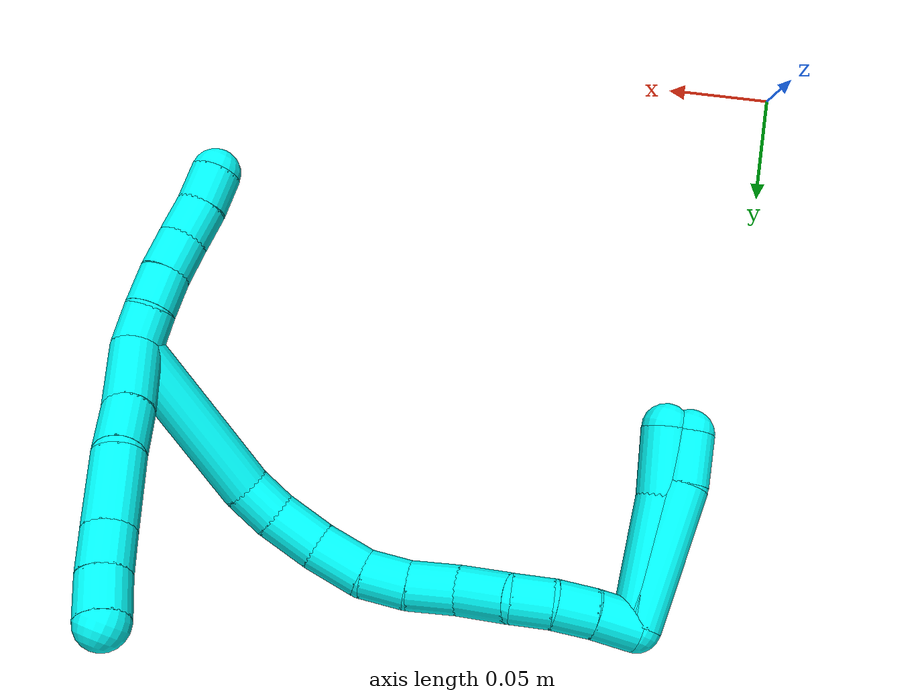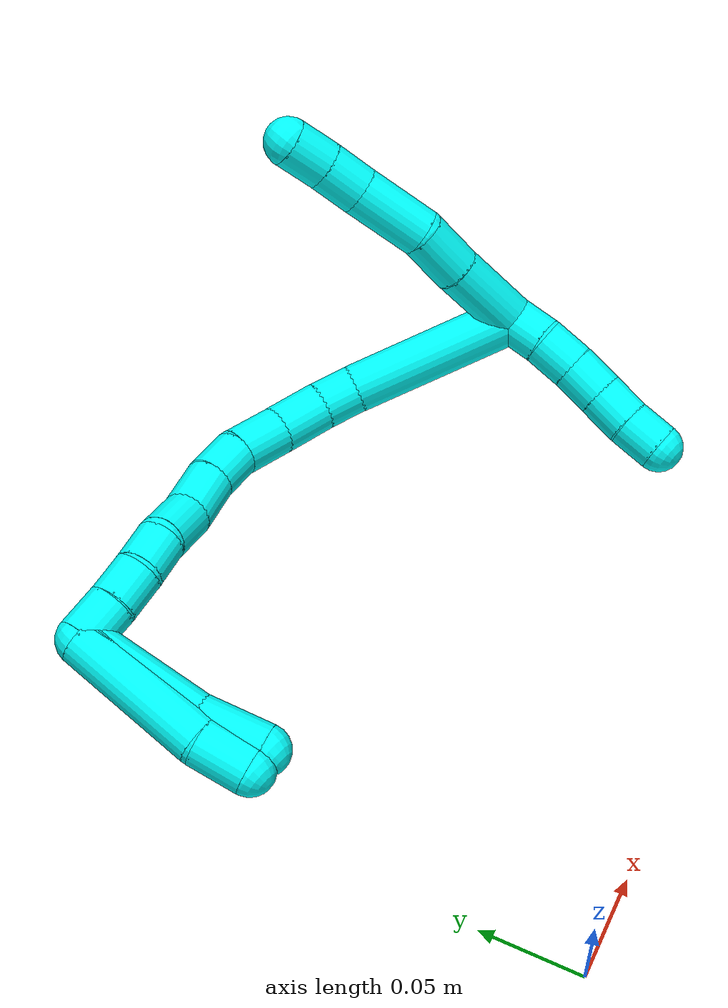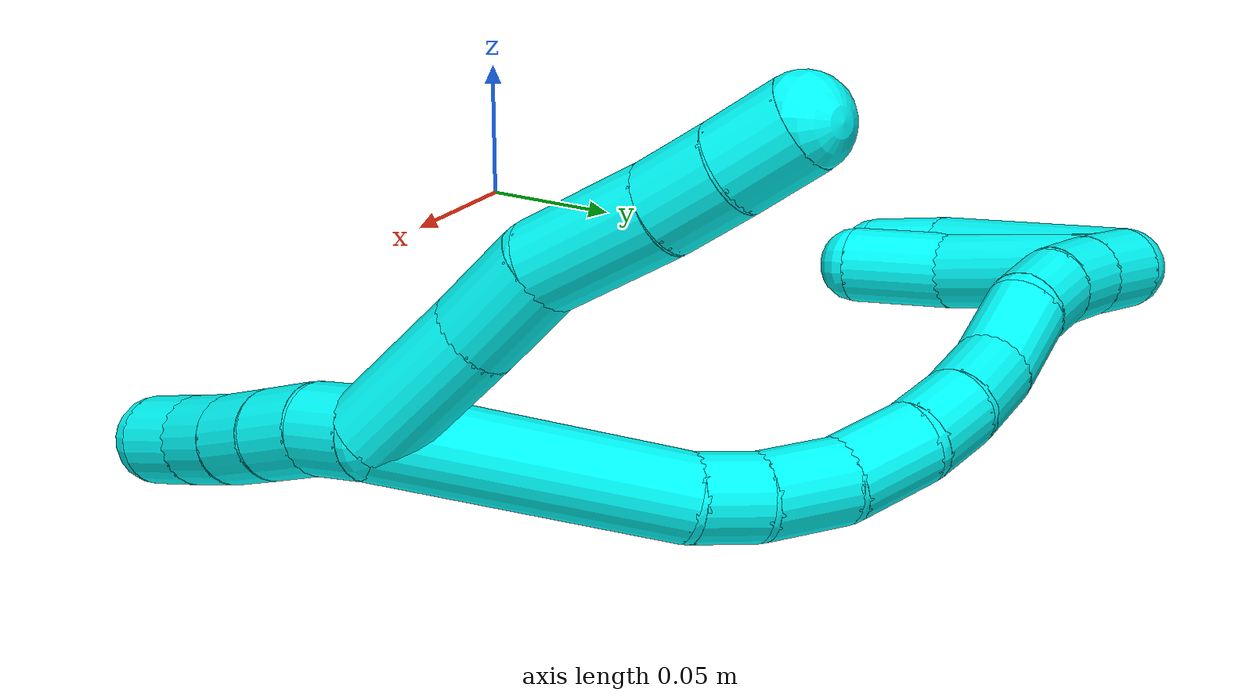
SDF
<sdf version="1.7">
 <world name="default">
  <model name="photoneo_s_sensor">
   <static>1</static>
   <pose>0 0 2 1.57079 1.57079 3.14159</pose>
   <link name="link">
    <inertial><mass>0.1</mass></inertial>
    <sensor name="sensor" type="depth">
     <update_rate>30</update_rate>
     <camera>
      <horizontal_fov>1.22</horizontal_fov>
      <image><width>1920</width><height>1200</height><format>B8G8R8</format></image>
      <clip><near>0.1</near><far>4</far></clip>
      <depth_camera><output>points</output></depth_camera>
     </camera>
     <plugin name="camera_plugin" filename="libgazebo_ros_depth_camera.so">
      <baseline>0.2</baseline>
      <alwaysOn>1</alwaysOn>
      <updateRate>0.0</updateRate>
      <cameraName>camera_ir</cameraName>
      <imageTopicName>/camera/color/image_raw</imageTopicName>
      <cameraInfoTopicName>/camera/color/camera_info</cameraInfoTopicName>
      <depthImageTopicName>/camera/depth/image_raw</depthImageTopicName>
      <depthImageCameraInfoTopicName>/camera/depth/camera_info</depthImageCameraInfoTopicName>
      <pointCloudTopicName>/camera/depth/points</pointCloudTopicName>
      <frameName>fr_optical</frameName>
      <pointCloudCutoff>0.1</pointCloudCutoff>
      <pointCloudCutoffMax>2.0</pointCloudCutoffMax>
      <distortionK1>0</distortionK1>
      <distortionK2>0</distortionK2>
      <distortionK3>0</distortionK3>
      <distortionT1>0</distortionT1>
      <distortionT2>0</distortionT2>
      <CxPrime>0</CxPrime>
      <Cx>0</Cx>
      <Cy>0</Cy>
      <focalLength>0</focalLength>
      <hackBaseline>0</hackBaseline>
     </plugin>
    </sensor>
   </link>
  </model>
  <model name="bin">
   <static>1</static>
   <link name="bottom">
    <collision name="collision-bottom">
     <pose>0 0 -0.01 0 -0 0</pose>
     <geometry><box><size>0.8 0.6 0.02</size></box></geometry>
     <surface>
      <friction><ode><mu>100</mu><mu2>100</mu2></ode></friction>
      <contact><collide_bitmask>65535</collide_bitmask></contact>
     </surface>
    </collision>
   </link>
   <link name="west_wall">
    <collision name="collision-west_wall">
     <pose>-0.41 0 0.1 0 -0 0</pose>
     <geometry><box><size>0.02 0.6 0.2</size></box></geometry>
     <surface>
      <friction><ode><mu>100</mu><mu2>100</mu2></ode></friction>
      <contact><collide_bitmask>65535</collide_bitmask></contact>
     </surface>
    </collision>
   </link>
   <link name="east_wall">
    <collision name="collision-east_wall">
     <pose>0.41 0 0.1 0 -0 0</pose>
     <geometry><box><size>0.02 0.6 0.2</size></box></geometry>
     <surface>
      <friction><ode><mu>100</mu><mu2>100</mu2></ode></friction>
      <contact><collide_bitmask>65535</collide_bitmask></contact>
     </surface>
    </collision>
   </link>
   <link name="south_wall">
    <collision name="collision-south_wall">
     <pose>0 -0.31 0.1 0 -0 0</pose>
     <geometry><box><size>0.8 0.02 0.2</size></box></geometry>
     <surface>
      <friction><ode><mu>100</mu><mu2>100</mu2></ode></friction>
      <contact><collide_bitmask>65535</collide_bitmask></contact>
     </surface>
    </collision>
   </link>
   <link name="north_wall">
    <collision name="collision-north_wall">
     <pose>0 0.31 0.1 0 -0 0</pose>
     <geometry><box><size>0.8 0.02 0.2</size></box></geometry>
     <surface>
      <friction><ode><mu>100</mu><mu2>100</mu2></ode></friction>
      <contact><collide_bitmask>65535</collide_bitmask></contact>
     </surface>
    </collision>
   </link>
  </model>
  <model name="3">
   <static>0</static>
   <link name="3">
    <collision name="collision-cylinder-e_1_2_8">
     <pose>-0.010745 -0.009549 0.015903 0.540749 -0.525013 -0.148676</pose>
     <geometry><cylinder><radius>0.0125</radius><length>0.042874</length></cylinder></geometry>
     <surface>
      <friction><ode><mu>1.16</mu><mu2>1.16</mu2><slip1>0</slip1><slip2>0</slip2></ode></friction>
      <contact><ode><kp>1e+06</kp><kd>1</kd><max_vel>0</max_vel><min_depth>0.001</min_depth></ode></contact>
     </surface>
    </collision>
    <visual name="visual-cylinder-e_1_2_8">
     <pose>-0.010745 -0.009549 0.015903 0.540749 -0.525013 -0.148676</pose>
     <geometry><cylinder><radius>0.0125</radius><length>0.042874</length></cylinder></geometry>
     <material><ambient>0.003922 1 0.996078 1</ambient></material>
    </visual>
    <collision name="collision-cylinder-e_2_8_9">
     <pose>-0.027675 -0.025591 0.042115 0.562085 -0.469816 -0.13796</pose>
     <geometry><cylinder><radius>0.0125</radius><length>0.027328</length></cylinder></geometry>
     <surface>
      <friction><ode><mu>1.16</mu><mu2>1.16</mu2><slip1>0</slip1><slip2>0</slip2></ode></friction>
      <contact><ode><kp>1e+06</kp><kd>1</kd><max_vel>0</max_vel><min_depth>0.001</min_depth></ode></contact>
     </surface>
    </collision>
    <visual name="visual-cylinder-e_2_8_9">
     <pose>-0.027675 -0.025591 0.042115 0.562085 -0.469816 -0.13796</pose>
     <geometry><cylinder><radius>0.0125</radius><length>0.027328</length></cylinder></geometry>
     <material><ambient>0.003922 1 0.996078 1</ambient></material>
    </visual>
    <collision name="collision-cylinder-e_3_9_10">
     <pose>-0.041749 -0.036235 0.068823 0.247873 -0.436341 -0.055222</pose>
     <geometry><cylinder><radius>0.0125</radius><length>0.037328</length></cylinder></geometry>
     <surface>
      <friction><ode><mu>1.16</mu><mu2>1.16</mu2><slip1>0</slip1><slip2>0</slip2></ode></friction>
      <contact><ode><kp>1e+06</kp><kd>1</kd><max_vel>0</max_vel><min_depth>0.001</min_depth></ode></contact>
     </surface>
    </collision>
    <visual name="visual-cylinder-e_3_9_10">
     <pose>-0.041749 -0.036235 0.068823 0.247873 -0.436341 -0.055222</pose>
     <geometry><cylinder><radius>0.0125</radius><length>0.037328</length></cylinder></geometry>
     <material><ambient>0.003922 1 0.996078 1</ambient></material>
    </visual>
    <collision name="collision-cylinder-e_4_10_11">
     <pose>-0.054437 -0.043285 0.094201 0.312396 -0.470477 -0.075453</pose>
     <geometry><cylinder><radius>0.0125</radius><length>0.021175</length></cylinder></geometry>
     <surface>
      <friction><ode><mu>1.16</mu><mu2>1.16</mu2><slip1>0</slip1><slip2>0</slip2></ode></friction>
      <contact><ode><kp>1e+06</kp><kd>1</kd><max_vel>0</max_vel><min_depth>0.001</min_depth></ode></contact>
     </surface>
    </collision>
    <visual name="visual-cylinder-e_4_10_11">
     <pose>-0.054437 -0.043285 0.094201 0.312396 -0.470477 -0.075453</pose>
     <geometry><cylinder><radius>0.0125</radius><length>0.021175</length></cylinder></geometry>
     <material><ambient>0.003922 1 0.996078 1</ambient></material>
    </visual>
    <collision name="collision-cylinder-e_5_11_6">
     <pose>-0.064778 -0.049085 0.111799 0.324627 -0.547416 -0.091884</pose>
     <geometry><cylinder><radius>0.0125</radius><length>0.021295</length></cylinder></geometry>
     <surface>
      <friction><ode><mu>1.16</mu><mu2>1.16</mu2><slip1>0</slip1><slip2>0</slip2></ode></friction>
      <contact><ode><kp>1e+06</kp><kd>1</kd><max_vel>0</max_vel><min_depth>0.001</min_depth></ode></contact>
     </surface>
    </collision>
    <visual name="visual-cylinder-e_5_11_6">
     <pose>-0.064778 -0.049085 0.111799 0.324627 -0.547416 -0.091884</pose>
     <geometry><cylinder><radius>0.0125</radius><length>0.021295</length></cylinder></geometry>
     <material><ambient>0.003922 1 0.996078 1</ambient></material>
    </visual>
    <collision name="collision-cylinder-e_1_2_12">
     <pose>0.000766 -0.000299 -0.009966 3.1116 0.076675 2.39621</pose>
     <geometry><cylinder><radius>0.0125</radius><length>0.02</length></cylinder></geometry>
     <surface>
      <friction><ode><mu>1.16</mu><mu2>1.16</mu2><slip1>0</slip1><slip2>0</slip2></ode></friction>
      <contact><ode><kp>1e+06</kp><kd>1</kd><max_vel>0</max_vel><min_depth>0.001</min_depth></ode></contact>
     </surface>
    </collision>
    <visual name="visual-cylinder-e_1_2_12">
     <pose>0.000766 -0.000299 -0.009966 3.1116 0.076675 2.39621</pose>
     <geometry><cylinder><radius>0.0125</radius><length>0.02</length></cylinder></geometry>
     <material><ambient>0.003922 1 0.996078 1</ambient></material>
    </visual>
    <collision name="collision-cylinder-e_2_12_13">
     <pose>0.00269 0.00066 -0.029785 -3.01455 0.116085 -1.48053</pose>
     <geometry><cylinder><radius>0.0125</radius><length>0.02</length></cylinder></geometry>
     <surface>
      <friction><ode><mu>1.16</mu><mu2>1.16</mu2><slip1>0</slip1><slip2>0</slip2></ode></friction>
      <contact><ode><kp>1e+06</kp><kd>1</kd><max_vel>0</max_vel><min_depth>0.001</min_depth></ode></contact>
     </surface>
    </collision>
    <visual name="visual-cylinder-e_2_12_13">
     <pose>0.00269 0.00066 -0.029785 -3.01455 0.116085 -1.48053</pose>
     <geometry><cylinder><radius>0.0125</radius><length>0.02</length></cylinder></geometry>
     <material><ambient>0.003922 1 0.996078 1</ambient></material>
    </visual>
    <collision name="collision-cylinder-e_3_13_14">
     <pose>0.004221 0.00353 -0.0495 -2.97967 0.037255 -0.451386</pose>
     <geometry><cylinder><radius>0.0125</radius><length>0.02</length></cylinder></geometry>
     <surface>
      <friction><ode><mu>1.16</mu><mu2>1.16</mu2><slip1>0</slip1><slip2>0</slip2></ode></friction>
      <contact><ode><kp>1e+06</kp><kd>1</kd><max_vel>0</max_vel><min_depth>0.001</min_depth></ode></contact>
     </surface>
    </collision>
    <visual name="visual-cylinder-e_3_13_14">
     <pose>0.004221 0.00353 -0.0495 -2.97967 0.037255 -0.451386</pose>
     <geometry><cylinder><radius>0.0125</radius><length>0.02</length></cylinder></geometry>
     <material><ambient>0.003922 1 0.996078 1</ambient></material>
    </visual>
    <collision name="collision-cylinder-e_4_14_15">
     <pose>0.004504 0.006423 -0.069279 -3.01299 -0.008903 0.13804</pose>
     <geometry><cylinder><radius>0.0125</radius><length>0.02</length></cylinder></geometry>
     <surface>
      <friction><ode><mu>1.16</mu><mu2>1.16</mu2><slip1>0</slip1><slip2>0</slip2></ode></friction>
      <contact><ode><kp>1e+06</kp><kd>1</kd><max_vel>0</max_vel><min_depth>0.001</min_depth></ode></contact>
     </surface>
    </collision>
    <visual name="visual-cylinder-e_4_14_15">
     <pose>0.004504 0.006423 -0.069279 -3.01299 -0.008903 0.13804</pose>
     <geometry><cylinder><radius>0.0125</radius><length>0.02</length></cylinder></geometry>
     <material><ambient>0.003922 1 0.996078 1</ambient></material>
    </visual>
    <collision name="collision-cylinder-e_5_15_5">
     <pose>0.005038 0.0083 -0.089159 -3.08202 0.062335 -1.61612</pose>
     <geometry><cylinder><radius>0.0125</radius><length>0.02</length></cylinder></geometry>
     <surface>
      <friction><ode><mu>1.16</mu><mu2>1.16</mu2><slip1>0</slip1><slip2>0</slip2></ode></friction>
      <contact><ode><kp>1e+06</kp><kd>1</kd><max_vel>0</max_vel><min_depth>0.001</min_depth></ode></contact>
     </surface>
    </collision>
    <visual name="visual-cylinder-e_5_15_5">
     <pose>0.005038 0.0083 -0.089159 -3.08202 0.062335 -1.61612</pose>
     <geometry><cylinder><radius>0.0125</radius><length>0.02</length></cylinder></geometry>
     <material><ambient>0.003922 1 0.996078 1</ambient></material>
    </visual>
    <collision name="collision-cylinder-e_1_2_16">
     <pose>-0.027995 0.02764 0.019232 -0.962895 -0.693585 0.373232</pose>
     <geometry><cylinder><radius>0.0125</radius><length>0.087579</length></cylinder></geometry>
     <surface>
      <friction><ode><mu>1.16</mu><mu2>1.16</mu2><slip1>0</slip1><slip2>0</slip2></ode></friction>
      <contact><ode><kp>1e+06</kp><kd>1</kd><max_vel>0</max_vel><min_depth>0.001</min_depth></ode></contact>
     </surface>
    </collision>
    <visual name="visual-cylinder-e_1_2_16">
     <pose>-0.027995 0.02764 0.019232 -0.962895 -0.693585 0.373232</pose>
     <geometry><cylinder><radius>0.0125</radius><length>0.087579</length></cylinder></geometry>
     <material><ambient>0.003922 1 0.996078 1</ambient></material>
    </visual>
    <collision name="collision-cylinder-e_2_16_17">
     <pose>-0.063937 0.06041 0.041884 -0.982725 -0.911045 0.512774</pose>
     <geometry><cylinder><radius>0.0125</radius><length>0.020118</length></cylinder></geometry>
     <surface>
      <friction><ode><mu>1.16</mu><mu2>1.16</mu2><slip1>0</slip1><slip2>0</slip2></ode></friction>
      <contact><ode><kp>1e+06</kp><kd>1</kd><max_vel>0</max_vel><min_depth>0.001</min_depth></ode></contact>
     </surface>
    </collision>
    <visual name="visual-cylinder-e_2_16_17">
     <pose>-0.063937 0.06041 0.041884 -0.982725 -0.911045 0.512774</pose>
     <geometry><cylinder><radius>0.0125</radius><length>0.020118</length></cylinder></geometry>
     <material><ambient>0.003922 1 0.996078 1</ambient></material>
    </visual>
    <collision name="collision-cylinder-e_3_17_18">
     <pose>-0.083685 0.070762 0.048442 -1.02982 -1.09413 0.663765</pose>
     <geometry><cylinder><radius>0.0125</radius><length>0.026559</length></cylinder></geometry>
     <surface>
      <friction><ode><mu>1.16</mu><mu2>1.16</mu2><slip1>0</slip1><slip2>0</slip2></ode></friction>
      <contact><ode><kp>1e+06</kp><kd>1</kd><max_vel>0</max_vel><min_depth>0.001</min_depth></ode></contact>
     </surface>
    </collision>
    <visual name="visual-cylinder-e_3_17_18">
     <pose>-0.083685 0.070762 0.048442 -1.02982 -1.09413 0.663765</pose>
     <geometry><cylinder><radius>0.0125</radius><length>0.026559</length></cylinder></geometry>
     <material><ambient>0.003922 1 0.996078 1</ambient></material>
    </visual>
    <collision name="collision-cylinder-e_4_18_19">
     <pose>-0.10867 0.078556 0.053717 -0.877165 -1.32252 0.699912</pose>
     <geometry><cylinder><radius>0.0125</radius><length>0.027208</length></cylinder></geometry>
     <surface>
      <friction><ode><mu>1.16</mu><mu2>1.16</mu2><slip1>0</slip1><slip2>0</slip2></ode></friction>
      <contact><ode><kp>1e+06</kp><kd>1</kd><max_vel>0</max_vel><min_depth>0.001</min_depth></ode></contact>
     </surface>
    </collision>
    <visual name="visual-cylinder-e_4_18_19">
     <pose>-0.10867 0.078556 0.053717 -0.877165 -1.32252 0.699912</pose>
     <geometry><cylinder><radius>0.0125</radius><length>0.027208</length></cylinder></geometry>
     <material><ambient>0.003922 1 0.996078 1</ambient></material>
    </visual>
    <collision name="collision-cylinder-e_5_19_20">
     <pose>-0.13295 0.083051 0.054617 -2.14205 -1.36736 1.96079</pose>
     <geometry><cylinder><radius>0.0125</radius><length>0.022652</length></cylinder></geometry>
     <surface>
      <friction><ode><mu>1.16</mu><mu2>1.16</mu2><slip1>0</slip1><slip2>0</slip2></ode></friction>
      <contact><ode><kp>1e+06</kp><kd>1</kd><max_vel>0</max_vel><min_depth>0.001</min_depth></ode></contact>
     </surface>
    </collision>
    <visual name="visual-cylinder-e_5_19_20">
     <pose>-0.13295 0.083051 0.054617 -2.14205 -1.36736 1.96079</pose>
     <geometry><cylinder><radius>0.0125</radius><length>0.022652</length></cylinder></geometry>
     <material><ambient>0.003922 1 0.996078 1</ambient></material>
    </visual>
    <collision name="collision-cylinder-e_6_20_21">
     <pose>-0.156198 0.086904 0.049938 -2.63101 -1.25702 2.45213</pose>
     <geometry><cylinder><radius>0.0125</radius><length>0.025559</length></cylinder></geometry>
     <surface>
      <friction><ode><mu>1.16</mu><mu2>1.16</mu2><slip1>0</slip1><slip2>0</slip2></ode></friction>
      <contact><ode><kp>1e+06</kp><kd>1</kd><max_vel>0</max_vel><min_depth>0.001</min_depth></ode></contact>
     </surface>
    </collision>
    <visual name="visual-cylinder-e_6_20_21">
     <pose>-0.156198 0.086904 0.049938 -2.63101 -1.25702 2.45213</pose>
     <geometry><cylinder><radius>0.0125</radius><length>0.025559</length></cylinder></geometry>
     <material><ambient>0.003922 1 0.996078 1</ambient></material>
    </visual>
    <collision name="collision-cylinder-e_7_21_22">
     <pose>-0.181382 0.087032 0.044165 2.48443 -1.34847 -2.33511</pose>
     <geometry><cylinder><radius>0.0125</radius><length>0.026715</length></cylinder></geometry>
     <surface>
      <friction><ode><mu>1.16</mu><mu2>1.16</mu2><slip1>0</slip1><slip2>0</slip2></ode></friction>
      <contact><ode><kp>1e+06</kp><kd>1</kd><max_vel>0</max_vel><min_depth>0.001</min_depth></ode></contact>
     </surface>
    </collision>
    <visual name="visual-cylinder-e_7_21_22">
     <pose>-0.181382 0.087032 0.044165 2.48443 -1.34847 -2.33511</pose>
     <geometry><cylinder><radius>0.0125</radius><length>0.026715</length></cylinder></geometry>
     <material><ambient>0.003922 1 0.996078 1</ambient></material>
    </visual>
    <collision name="collision-cylinder-e_8_22_23">
     <pose>-0.204275 0.08733 0.039385 -2.43334 -1.25495 2.19873</pose>
     <geometry><cylinder><radius>0.0125</radius><length>0.020754</length></cylinder></geometry>
     <surface>
      <friction><ode><mu>1.16</mu><mu2>1.16</mu2><slip1>0</slip1><slip2>0</slip2></ode></friction>
      <contact><ode><kp>1e+06</kp><kd>1</kd><max_vel>0</max_vel><min_depth>0.001</min_depth></ode></contact>
     </surface>
    </collision>
    <visual name="visual-cylinder-e_8_22_23">
     <pose>-0.204275 0.08733 0.039385 -2.43334 -1.25495 2.19873</pose>
     <geometry><cylinder><radius>0.0125</radius><length>0.020754</length></cylinder></geometry>
     <material><ambient>0.003922 1 0.996078 1</ambient></material>
    </visual>
    <collision name="collision-cylinder-e_9_23_24">
     <pose>-0.223512 0.093411 0.035335 -1.95301 -1.14118 1.51922</pose>
     <geometry><cylinder><radius>0.0125</radius><length>0.020621</length></cylinder></geometry>
     <surface>
      <friction><ode><mu>1.16</mu><mu2>1.16</mu2><slip1>0</slip1><slip2>0</slip2></ode></friction>
      <contact><ode><kp>1e+06</kp><kd>1</kd><max_vel>0</max_vel><min_depth>0.001</min_depth></ode></contact>
     </surface>
    </collision>
    <visual name="visual-cylinder-e_9_23_24">
     <pose>-0.223512 0.093411 0.035335 -1.95301 -1.14118 1.51922</pose>
     <geometry><cylinder><radius>0.0125</radius><length>0.020621</length></cylinder></geometry>
     <material><ambient>0.003922 1 0.996078 1</ambient></material>
    </visual>
    <collision name="collision-cylinder-e_10_24_1">
     <pose>-0.242856 0.102218 0.032765 -1.76886 -1.11251 1.29837</pose>
     <geometry><cylinder><radius>0.0125</radius><length>0.022234</length></cylinder></geometry>
     <surface>
      <friction><ode><mu>1.16</mu><mu2>1.16</mu2><slip1>0</slip1><slip2>0</slip2></ode></friction>
      <contact><ode><kp>1e+06</kp><kd>1</kd><max_vel>0</max_vel><min_depth>0.001</min_depth></ode></contact>
     </surface>
    </collision>
    <visual name="visual-cylinder-e_10_24_1">
     <pose>-0.242856 0.102218 0.032765 -1.76886 -1.11251 1.29837</pose>
     <geometry><cylinder><radius>0.0125</radius><length>0.022234</length></cylinder></geometry>
     <material><ambient>0.003922 1 0.996078 1</ambient></material>
    </visual>
    <collision name="collision-cylinder-e_1_1_25">
     <pose>-0.247996 0.106242 -0.000359 3.11678 0.14903 2.81224</pose>
     <geometry><cylinder><radius>0.0125</radius><length>0.065054</length></cylinder></geometry>
     <surface>
      <friction><ode><mu>1.16</mu><mu2>1.16</mu2><slip1>0</slip1><slip2>0</slip2></ode></friction>
      <contact><ode><kp>1e+06</kp><kd>1</kd><max_vel>0</max_vel><min_depth>0.001</min_depth></ode></contact>
     </surface>
    </collision>
    <visual name="visual-cylinder-e_1_1_25">
     <pose>-0.247996 0.106242 -0.000359 3.11678 0.14903 2.81224</pose>
     <geometry><cylinder><radius>0.0125</radius><length>0.065054</length></cylinder></geometry>
     <material><ambient>0.003922 1 0.996078 1</ambient></material>
    </visual>
    <collision name="collision-cylinder-e_2_25_4">
     <pose>-0.238976 0.102475 -0.049217 2.96567 0.242162 1.88726</pose>
     <geometry><cylinder><radius>0.0125</radius><length>0.034946</length></cylinder></geometry>
     <surface>
      <friction><ode><mu>1.16</mu><mu2>1.16</mu2><slip1>0</slip1><slip2>0</slip2></ode></friction>
      <contact><ode><kp>1e+06</kp><kd>1</kd><max_vel>0</max_vel><min_depth>0.001</min_depth></ode></contact>
     </surface>
    </collision>
    <visual name="visual-cylinder-e_2_25_4">
     <pose>-0.238976 0.102475 -0.049217 2.96567 0.242162 1.88726</pose>
     <geometry><cylinder><radius>0.0125</radius><length>0.034946</length></cylinder></geometry>
     <material><ambient>0.003922 1 0.996078 1</ambient></material>
    </visual>
    <collision name="collision-cylinder-e_1_1_26">
     <pose>-0.252296 0.10596 -0.004869 3.11213 0.014433 0.911072</pose>
     <geometry><cylinder><radius>0.0125</radius><length>0.073373</length></cylinder></geometry>
     <surface>
      <friction><ode><mu>1.16</mu><mu2>1.16</mu2><slip1>0</slip1><slip2>0</slip2></ode></friction>
      <contact><ode><kp>1e+06</kp><kd>1</kd><max_vel>0</max_vel><min_depth>0.001</min_depth></ode></contact>
     </surface>
    </collision>
    <visual name="visual-cylinder-e_1_1_26">
     <pose>-0.252296 0.10596 -0.004869 3.11213 0.014433 0.911072</pose>
     <geometry><cylinder><radius>0.0125</radius><length>0.073373</length></cylinder></geometry>
     <material><ambient>0.003922 1 0.996078 1</ambient></material>
    </visual>
    <collision name="collision-cylinder-e_2_26_3">
     <pose>-0.249 0.103981 -0.054527 3.07253 0.20934 2.5062</pose>
     <geometry><cylinder><radius>0.0125</radius><length>0.026627</length></cylinder></geometry>
     <surface>
      <friction><ode><mu>1.16</mu><mu2>1.16</mu2><slip1>0</slip1><slip2>0</slip2></ode></friction>
      <contact><ode><kp>1e+06</kp><kd>1</kd><max_vel>0</max_vel><min_depth>0.001</min_depth></ode></contact>
     </surface>
    </collision>
    <visual name="visual-cylinder-e_2_26_3">
     <pose>-0.249 0.103981 -0.054527 3.07253 0.20934 2.5062</pose>
     <geometry><cylinder><radius>0.0125</radius><length>0.026627</length></cylinder></geometry>
     <material><ambient>0.003922 1 0.996078 1</ambient></material>
    </visual>
    <collision name="collision-sphere-3">
     <pose>-0.246233 0.103082 -0.067519 0 -0 0</pose>
     <geometry><sphere><radius>0.0125</radius></sphere></geometry>
     <surface>
      <friction><ode><mu>1.16</mu><mu2>1.16</mu2><slip1>0</slip1><slip2>0</slip2></ode></friction>
      <contact><ode><kp>1e+06</kp><kd>1</kd><max_vel>0</max_vel><min_depth>0.001</min_depth></ode></contact>
     </surface>
    </collision>
    <visual name="visual-sphere-3">
     <pose>-0.246233 0.103082 -0.067519 0 -0 0</pose>
     <geometry><sphere><radius>0.0125</radius></sphere></geometry>
     <material><ambient>0.003922 1 0.996078 1</ambient></material>
    </visual>
    <collision name="collision-sphere-26">
     <pose>-0.251767 0.104879 -0.041535 0 -0 0</pose>
     <geometry><sphere><radius>0.0125</radius></sphere></geometry>
     <surface>
      <friction><ode><mu>1.16</mu><mu2>1.16</mu2><slip1>0</slip1><slip2>0</slip2></ode></friction>
      <contact><ode><kp>1e+06</kp><kd>1</kd><max_vel>0</max_vel><min_depth>0.001</min_depth></ode></contact>
     </surface>
    </collision>
    <visual name="visual-sphere-26">
     <pose>-0.251767 0.104879 -0.041535 0 -0 0</pose>
     <geometry><sphere><radius>0.0125</radius></sphere></geometry>
     <material><ambient>0.003922 1 0.996078 1</ambient></material>
    </visual>
    <collision name="collision-sphere-4">
     <pose>-0.234786 0.099507 -0.065918 0 -0 0</pose>
     <geometry><sphere><radius>0.0125</radius></sphere></geometry>
     <surface>
      <friction><ode><mu>1.16</mu><mu2>1.16</mu2><slip1>0</slip1><slip2>0</slip2></ode></friction>
      <contact><ode><kp>1e+06</kp><kd>1</kd><max_vel>0</max_vel><min_depth>0.001</min_depth></ode></contact>
     </surface>
    </collision>
    <visual name="visual-sphere-4">
     <pose>-0.234786 0.099507 -0.065918 0 -0 0</pose>
     <geometry><sphere><radius>0.0125</radius></sphere></geometry>
     <material><ambient>0.003922 1 0.996078 1</ambient></material>
    </visual>
    <collision name="collision-sphere-25">
     <pose>-0.243167 0.105444 -0.032516 0 -0 0</pose>
     <geometry><sphere><radius>0.0125</radius></sphere></geometry>
     <surface>
      <friction><ode><mu>1.16</mu><mu2>1.16</mu2><slip1>0</slip1><slip2>0</slip2></ode></friction>
      <contact><ode><kp>1e+06</kp><kd>1</kd><max_vel>0</max_vel><min_depth>0.001</min_depth></ode></contact>
     </surface>
    </collision>
    <visual name="visual-sphere-25">
     <pose>-0.243167 0.105444 -0.032516 0 -0 0</pose>
     <geometry><sphere><radius>0.0125</radius></sphere></geometry>
     <material><ambient>0.003922 1 0.996078 1</ambient></material>
    </visual>
    <collision name="collision-sphere-1">
     <pose>-0.252826 0.10704 0.031798 0 -0 0</pose>
     <geometry><sphere><radius>0.0125</radius></sphere></geometry>
     <surface>
      <friction><ode><mu>1.16</mu><mu2>1.16</mu2><slip1>0</slip1><slip2>0</slip2></ode></friction>
      <contact><ode><kp>1e+06</kp><kd>1</kd><max_vel>0</max_vel><min_depth>0.001</min_depth></ode></contact>
     </surface>
    </collision>
    <visual name="visual-sphere-1">
     <pose>-0.252826 0.10704 0.031798 0 -0 0</pose>
     <geometry><sphere><radius>0.0125</radius></sphere></geometry>
     <material><ambient>0.003922 1 0.996078 1</ambient></material>
    </visual>
    <collision name="collision-sphere-24">
     <pose>-0.232886 0.097396 0.033733 0 -0 0</pose>
     <geometry><sphere><radius>0.0125</radius></sphere></geometry>
     <surface>
      <friction><ode><mu>1.16</mu><mu2>1.16</mu2><slip1>0</slip1><slip2>0</slip2></ode></friction>
      <contact><ode><kp>1e+06</kp><kd>1</kd><max_vel>0</max_vel><min_depth>0.001</min_depth></ode></contact>
     </surface>
    </collision>
    <visual name="visual-sphere-24">
     <pose>-0.232886 0.097396 0.033733 0 -0 0</pose>
     <geometry><sphere><radius>0.0125</radius></sphere></geometry>
     <material><ambient>0.003922 1 0.996078 1</ambient></material>
    </visual>
    <collision name="collision-sphere-23">
     <pose>-0.214139 0.089426 0.036937 0 -0 0</pose>
     <geometry><sphere><radius>0.0125</radius></sphere></geometry>
     <surface>
      <friction><ode><mu>1.16</mu><mu2>1.16</mu2><slip1>0</slip1><slip2>0</slip2></ode></friction>
      <contact><ode><kp>1e+06</kp><kd>1</kd><max_vel>0</max_vel><min_depth>0.001</min_depth></ode></contact>
     </surface>
    </collision>
    <visual name="visual-sphere-23">
     <pose>-0.214139 0.089426 0.036937 0 -0 0</pose>
     <geometry><sphere><radius>0.0125</radius></sphere></geometry>
     <material><ambient>0.003922 1 0.996078 1</ambient></material>
    </visual>
    <collision name="collision-sphere-22">
     <pose>-0.194411 0.085233 0.041833 0 -0 0</pose>
     <geometry><sphere><radius>0.0125</radius></sphere></geometry>
     <surface>
      <friction><ode><mu>1.16</mu><mu2>1.16</mu2><slip1>0</slip1><slip2>0</slip2></ode></friction>
      <contact><ode><kp>1e+06</kp><kd>1</kd><max_vel>0</max_vel><min_depth>0.001</min_depth></ode></contact>
     </surface>
    </collision>
    <visual name="visual-sphere-22">
     <pose>-0.194411 0.085233 0.041833 0 -0 0</pose>
     <geometry><sphere><radius>0.0125</radius></sphere></geometry>
     <material><ambient>0.003922 1 0.996078 1</ambient></material>
    </visual>
    <collision name="collision-sphere-21">
     <pose>-0.168353 0.088831 0.046497 0 -0 0</pose>
     <geometry><sphere><radius>0.0125</radius></sphere></geometry>
     <surface>
      <friction><ode><mu>1.16</mu><mu2>1.16</mu2><slip1>0</slip1><slip2>0</slip2></ode></friction>
      <contact><ode><kp>1e+06</kp><kd>1</kd><max_vel>0</max_vel><min_depth>0.001</min_depth></ode></contact>
     </surface>
    </collision>
    <visual name="visual-sphere-21">
     <pose>-0.168353 0.088831 0.046497 0 -0 0</pose>
     <geometry><sphere><radius>0.0125</radius></sphere></geometry>
     <material><ambient>0.003922 1 0.996078 1</ambient></material>
    </visual>
    <collision name="collision-sphere-6">
     <pose>-0.07032 -0.051985 0.120415 0 -0 0</pose>
     <geometry><sphere><radius>0.0125</radius></sphere></geometry>
     <surface>
      <friction><ode><mu>1.16</mu><mu2>1.16</mu2><slip1>0</slip1><slip2>0</slip2></ode></friction>
      <contact><ode><kp>1e+06</kp><kd>1</kd><max_vel>0</max_vel><min_depth>0.001</min_depth></ode></contact>
     </surface>
    </collision>
    <visual name="visual-sphere-6">
     <pose>-0.07032 -0.051985 0.120415 0 -0 0</pose>
     <geometry><sphere><radius>0.0125</radius></sphere></geometry>
     <material><ambient>0.003922 1 0.996078 1</ambient></material>
    </visual>
    <collision name="collision-sphere-11">
     <pose>-0.059236 -0.046185 0.103182 0 -0 0</pose>
     <geometry><sphere><radius>0.0125</radius></sphere></geometry>
     <surface>
      <friction><ode><mu>1.16</mu><mu2>1.16</mu2><slip1>0</slip1><slip2>0</slip2></ode></friction>
      <contact><ode><kp>1e+06</kp><kd>1</kd><max_vel>0</max_vel><min_depth>0.001</min_depth></ode></contact>
     </surface>
    </collision>
    <visual name="visual-sphere-11">
     <pose>-0.059236 -0.046185 0.103182 0 -0 0</pose>
     <geometry><sphere><radius>0.0125</radius></sphere></geometry>
     <material><ambient>0.003922 1 0.996078 1</ambient></material>
    </visual>
    <collision name="collision-sphere-10">
     <pose>-0.049637 -0.040385 0.085221 0 -0 0</pose>
     <geometry><sphere><radius>0.0125</radius></sphere></geometry>
     <surface>
      <friction><ode><mu>1.16</mu><mu2>1.16</mu2><slip1>0</slip1><slip2>0</slip2></ode></friction>
      <contact><ode><kp>1e+06</kp><kd>1</kd><max_vel>0</max_vel><min_depth>0.001</min_depth></ode></contact>
     </surface>
    </collision>
    <visual name="visual-sphere-10">
     <pose>-0.049637 -0.040385 0.085221 0 -0 0</pose>
     <geometry><sphere><radius>0.0125</radius></sphere></geometry>
     <material><ambient>0.003922 1 0.996078 1</ambient></material>
    </visual>
    <collision name="collision-sphere-9">
     <pose>-0.033861 -0.032085 0.052424 0 -0 0</pose>
     <geometry><sphere><radius>0.0125</radius></sphere></geometry>
     <surface>
      <friction><ode><mu>1.16</mu><mu2>1.16</mu2><slip1>0</slip1><slip2>0</slip2></ode></friction>
      <contact><ode><kp>1e+06</kp><kd>1</kd><max_vel>0</max_vel><min_depth>0.001</min_depth></ode></contact>
     </surface>
    </collision>
    <visual name="visual-sphere-9">
     <pose>-0.033861 -0.032085 0.052424 0 -0 0</pose>
     <geometry><sphere><radius>0.0125</radius></sphere></geometry>
     <material><ambient>0.003922 1 0.996078 1</ambient></material>
    </visual>
    <collision name="collision-sphere-2">
     <geometry><sphere><radius>0.0125</radius></sphere></geometry>
     <surface>
      <friction><ode><mu>1.16</mu><mu2>1.16</mu2><slip1>0</slip1><slip2>0</slip2></ode></friction>
      <contact><ode><kp>1e+06</kp><kd>1</kd><max_vel>0</max_vel><min_depth>0.001</min_depth></ode></contact>
     </surface>
    </collision>
    <visual name="visual-sphere-2">
     <geometry><sphere><radius>0.0125</radius></sphere></geometry>
     <material><ambient>0.003922 1 0.996078 1</ambient></material>
    </visual>
    <collision name="collision-sphere-19">
     <pose>-0.121857 0.081126 0.055854 0 -0 0</pose>
     <geometry><sphere><radius>0.0125</radius></sphere></geometry>
     <surface>
      <friction><ode><mu>1.16</mu><mu2>1.16</mu2><slip1>0</slip1><slip2>0</slip2></ode></friction>
      <contact><ode><kp>1e+06</kp><kd>1</kd><max_vel>0</max_vel><min_depth>0.001</min_depth></ode></contact>
     </surface>
    </collision>
    <visual name="visual-sphere-19">
     <pose>-0.121857 0.081126 0.055854 0 -0 0</pose>
     <geometry><sphere><radius>0.0125</radius></sphere></geometry>
     <material><ambient>0.003922 1 0.996078 1</ambient></material>
    </visual>
    <collision name="collision-sphere-8">
     <pose>-0.021489 -0.019098 0.031806 0 -0 0</pose>
     <geometry><sphere><radius>0.0125</radius></sphere></geometry>
     <surface>
      <friction><ode><mu>1.16</mu><mu2>1.16</mu2><slip1>0</slip1><slip2>0</slip2></ode></friction>
      <contact><ode><kp>1e+06</kp><kd>1</kd><max_vel>0</max_vel><min_depth>0.001</min_depth></ode></contact>
     </surface>
    </collision>
    <visual name="visual-sphere-8">
     <pose>-0.021489 -0.019098 0.031806 0 -0 0</pose>
     <geometry><sphere><radius>0.0125</radius></sphere></geometry>
     <material><ambient>0.003922 1 0.996078 1</ambient></material>
    </visual>
    <collision name="collision-sphere-12">
     <pose>0.001532 -0.000598 -0.019932 0 -0 0</pose>
     <geometry><sphere><radius>0.0125</radius></sphere></geometry>
     <surface>
      <friction><ode><mu>1.16</mu><mu2>1.16</mu2><slip1>0</slip1><slip2>0</slip2></ode></friction>
      <contact><ode><kp>1e+06</kp><kd>1</kd><max_vel>0</max_vel><min_depth>0.001</min_depth></ode></contact>
     </surface>
    </collision>
    <visual name="visual-sphere-12">
     <pose>0.001532 -0.000598 -0.019932 0 -0 0</pose>
     <geometry><sphere><radius>0.0125</radius></sphere></geometry>
     <material><ambient>0.003922 1 0.996078 1</ambient></material>
    </visual>
    <collision name="collision-sphere-13">
     <pose>0.003848 0.001919 -0.039638 0 -0 0</pose>
     <geometry><sphere><radius>0.0125</radius></sphere></geometry>
     <surface>
      <friction><ode><mu>1.16</mu><mu2>1.16</mu2><slip1>0</slip1><slip2>0</slip2></ode></friction>
      <contact><ode><kp>1e+06</kp><kd>1</kd><max_vel>0</max_vel><min_depth>0.001</min_depth></ode></contact>
     </surface>
    </collision>
    <visual name="visual-sphere-13">
     <pose>0.003848 0.001919 -0.039638 0 -0 0</pose>
     <geometry><sphere><radius>0.0125</radius></sphere></geometry>
     <material><ambient>0.003922 1 0.996078 1</ambient></material>
    </visual>
    <collision name="collision-sphere-14">
     <pose>0.004593 0.005141 -0.059362 0 -0 0</pose>
     <geometry><sphere><radius>0.0125</radius></sphere></geometry>
     <surface>
      <friction><ode><mu>1.16</mu><mu2>1.16</mu2><slip1>0</slip1><slip2>0</slip2></ode></friction>
      <contact><ode><kp>1e+06</kp><kd>1</kd><max_vel>0</max_vel><min_depth>0.001</min_depth></ode></contact>
     </surface>
    </collision>
    <visual name="visual-sphere-14">
     <pose>0.004593 0.005141 -0.059362 0 -0 0</pose>
     <geometry><sphere><radius>0.0125</radius></sphere></geometry>
     <material><ambient>0.003922 1 0.996078 1</ambient></material>
    </visual>
    <collision name="collision-sphere-15">
     <pose>0.004415 0.007706 -0.079196 0 -0 0</pose>
     <geometry><sphere><radius>0.0125</radius></sphere></geometry>
     <surface>
      <friction><ode><mu>1.16</mu><mu2>1.16</mu2><slip1>0</slip1><slip2>0</slip2></ode></friction>
      <contact><ode><kp>1e+06</kp><kd>1</kd><max_vel>0</max_vel><min_depth>0.001</min_depth></ode></contact>
     </surface>
    </collision>
    <visual name="visual-sphere-15">
     <pose>0.004415 0.007706 -0.079196 0 -0 0</pose>
     <geometry><sphere><radius>0.0125</radius></sphere></geometry>
     <material><ambient>0.003922 1 0.996078 1</ambient></material>
    </visual>
    <collision name="collision-sphere-5">
     <pose>0.005661 0.008894 -0.099122 0 -0 0</pose>
     <geometry><sphere><radius>0.0125</radius></sphere></geometry>
     <surface>
      <friction><ode><mu>1.16</mu><mu2>1.16</mu2><slip1>0</slip1><slip2>0</slip2></ode></friction>
      <contact><ode><kp>1e+06</kp><kd>1</kd><max_vel>0</max_vel><min_depth>0.001</min_depth></ode></contact>
     </surface>
    </collision>
    <visual name="visual-sphere-5">
     <pose>0.005661 0.008894 -0.099122 0 -0 0</pose>
     <geometry><sphere><radius>0.0125</radius></sphere></geometry>
     <material><ambient>0.003922 1 0.996078 1</ambient></material>
    </visual>
    <collision name="collision-sphere-16">
     <pose>-0.055989 0.05528 0.038464 0 -0 0</pose>
     <geometry><sphere><radius>0.0125</radius></sphere></geometry>
     <surface>
      <friction><ode><mu>1.16</mu><mu2>1.16</mu2><slip1>0</slip1><slip2>0</slip2></ode></friction>
      <contact><ode><kp>1e+06</kp><kd>1</kd><max_vel>0</max_vel><min_depth>0.001</min_depth></ode></contact>
     </surface>
    </collision>
    <visual name="visual-sphere-16">
     <pose>-0.055989 0.05528 0.038464 0 -0 0</pose>
     <geometry><sphere><radius>0.0125</radius></sphere></geometry>
     <material><ambient>0.003922 1 0.996078 1</ambient></material>
    </visual>
    <collision name="collision-sphere-17">
     <pose>-0.071885 0.065539 0.045304 0 -0 0</pose>
     <geometry><sphere><radius>0.0125</radius></sphere></geometry>
     <surface>
      <friction><ode><mu>1.16</mu><mu2>1.16</mu2><slip1>0</slip1><slip2>0</slip2></ode></friction>
      <contact><ode><kp>1e+06</kp><kd>1</kd><max_vel>0</max_vel><min_depth>0.001</min_depth></ode></contact>
     </surface>
    </collision>
    <visual name="visual-sphere-17">
     <pose>-0.071885 0.065539 0.045304 0 -0 0</pose>
     <geometry><sphere><radius>0.0125</radius></sphere></geometry>
     <material><ambient>0.003922 1 0.996078 1</ambient></material>
    </visual>
    <collision name="collision-sphere-18">
     <pose>-0.095484 0.075985 0.05158 0 -0 0</pose>
     <geometry><sphere><radius>0.0125</radius></sphere></geometry>
     <surface>
      <friction><ode><mu>1.16</mu><mu2>1.16</mu2><slip1>0</slip1><slip2>0</slip2></ode></friction>
      <contact><ode><kp>1e+06</kp><kd>1</kd><max_vel>0</max_vel><min_depth>0.001</min_depth></ode></contact>
     </surface>
    </collision>
    <visual name="visual-sphere-18">
     <pose>-0.095484 0.075985 0.05158 0 -0 0</pose>
     <geometry><sphere><radius>0.0125</radius></sphere></geometry>
     <material><ambient>0.003922 1 0.996078 1</ambient></material>
    </visual>
    <collision name="collision-sphere-20">
     <pose>-0.144042 0.084976 0.05338 0 -0 0</pose>
     <geometry><sphere><radius>0.0125</radius></sphere></geometry>
     <surface>
      <friction><ode><mu>1.16</mu><mu2>1.16</mu2><slip1>0</slip1><slip2>0</slip2></ode></friction>
      <contact><ode><kp>1e+06</kp><kd>1</kd><max_vel>0</max_vel><min_depth>0.001</min_depth></ode></contact>
     </surface>
    </collision>
    <visual name="visual-sphere-20">
     <pose>-0.144042 0.084976 0.05338 0 -0 0</pose>
     <geometry><sphere><radius>0.0125</radius></sphere></geometry>
     <material><ambient>0.003922 1 0.996078 1</ambient></material>
    </visual>
    <inertial>
     <pose>-0.119473 0.049436 0.015352 0 -0 0</pose>
     <mass>0.75</mass>
     <inertia><ixx>9.3e-05</ixx><ixy>0</ixy><ixz>0</ixz><iyy>0.000146</iyy><iyz>0</iyz><izz>1.4e-05</izz></inertia>
    </inertial>
   </link>
   <pose>0.295844 0.162289 0.042201 -1.35966 0.323259 -0.201293</pose>
  </model>
 </world>
</sdf>
